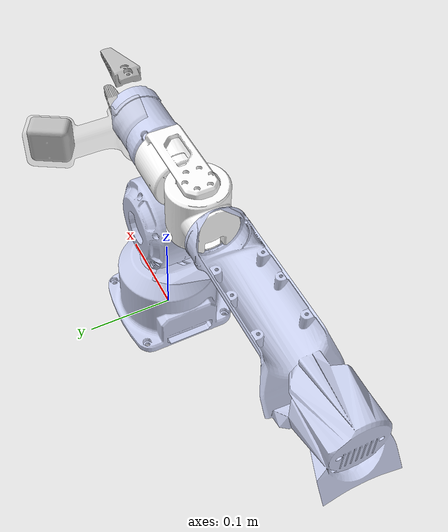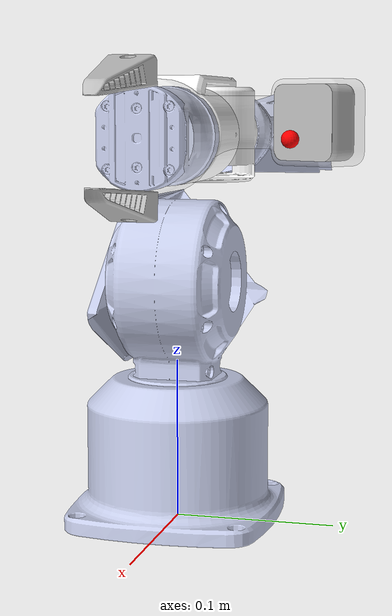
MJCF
<mujoco model="A1_URDF_0607_0028">
  <compiler angle="radian"/>

  <asset>
    <mesh name="base_link" content_type="model/stl" file="base_link.STL"/>
    <mesh name="arm_seg1" content_type="model/stl" file="arm_seg1.STL"/>
    <mesh name="arm_seg2" content_type="model/stl" file="arm_seg2.STL"/>
    <mesh name="arm_seg3" content_type="model/stl" file="arm_seg3.STL"/>
    <mesh name="arm_seg4" content_type="model/stl" file="arm_seg4.STL"/>
    <mesh name="arm_seg5" content_type="model/stl" file="arm_seg5.STL"/>
    <mesh name="arm_seg6" content_type="model/stl" file="arm_seg6.STL"/>
    <mesh name="galaxea_eoat_set" content_type="model/stl" file="galaxea_eoat_set.STL"/>
    <mesh name="left_finger" content_type="model/stl" file="left_finger.STL"/>
    <mesh name="right_finger" content_type="model/stl" file="right_finger.STL"/>
    <mesh name="camera" content_type="model/stl" file="camera.STL"/>
  </asset>

  <worldbody>
    <geom type="mesh" rgba="0.79216 0.81961 0.93333 1" mesh="base_link"/>
    <body name="arm_seg1" pos="-0.0011147 0 0.0892" quat="-3.67321e-06 0 0 1">
      <inertial pos="-1.4403e-06 -0.00074041 0.056573" quat="0.707084 0.00122867 -0.00107609 0.707127" mass="1.391" diaginertia="0.000708573 0.00058101 0.000445827"/>
      <joint name="arm_joint1" pos="0 0 0" axis="0 0 1" range="-2.8798 2.8798" actuatorfrcrange="-40 40"/>
      <geom type="mesh" rgba="0.79216 0.81961 0.93333 1" mesh="arm_seg1"/>
      <body name="arm_seg2" pos="0 -4e-05 0.0615" quat="0.707105 0.707108 0 0">
        <inertial pos="0.23622 0.016356 9.154e-05" quat="0.484393 0.48518 0.524693 0.504639" mass="1.3" diaginertia="0.00761886 0.00757469 0.000578276"/>
        <joint name="arm_joint2" pos="0 0 0" axis="0 0 1" range="0 3.1415" actuatorfrcrange="-40 40"/>
        <geom type="mesh" rgba="0.79216 0.81961 0.93333 1" mesh="arm_seg2"/>
        <body name="arm_seg3" pos="0.34928 0.02 0" quat="0.707105 0 0 0.707108">
          <inertial pos="0.054443 0.045347 0.00042807" quat="0.595278 0.471808 -0.522016 0.387995" mass="0.818" diaginertia="0.00149749 0.00144877 0.00053598"/>
          <joint name="arm_joint3" pos="0 0 0" axis="0 0 1" range="-3.3161 0" actuatorfrcrange="-27 27"/>
          <geom type="mesh" rgba="0.79216 0.81961 0.93333 1" mesh="arm_seg3"/>
          <body name="arm_seg4" pos="0.07 -0.00395 -4e-05" quat="0.499998 -0.5 0.5 0.500002">
            <inertial pos="7.6256e-07 -0.0021448 0.27415" quat="0.70651 0.0169198 -0.0168252 0.707301" mass="0.816" diaginertia="0.000101779 9.7042e-05 8.44616e-05"/>
            <joint name="arm_joint4" pos="0 0 0" axis="0 0 1" range="-2.8798 2.8798" actuatorfrcrange="-7 7"/>
            <geom type="mesh" rgba="1 1 1 1" mesh="arm_seg4"/>
            <body name="arm_seg5" pos="0 0 0.2776" quat="-2.59734e-06 2.59735e-06 -0.707108 0.707105">
              <inertial pos="-3.9997e-06 -0.05431 0.0034482" quat="0.477398 0.87868 0.00338218 -0.000840949" mass="0.801" diaginertia="0.00011332 0.000109027 7.34689e-05"/>
              <joint name="arm_joint5" pos="0 0 0" axis="0 0 1" range="-1.6581 1.6581" actuatorfrcrange="-7 7"/>
              <geom type="mesh" rgba="1 1 1 1" mesh="arm_seg5"/>
              <body name="arm_seg6" pos="0 -0.1575 -0.00023266" quat="0.707105 0.707108 0 0">
                <inertial pos="-0.0113206 0.00196256 0.0176711" quat="0.583625 -0.0526594 0.0473525 0.808929" mass="1.46952" diaginertia="0.00398591 0.00337199 0.00122082"/>
                <joint name="arm_joint6" pos="0 0 0" axis="0 0 1" range="-2.8798 2.8798" actuatorfrcrange="-7 7"/>
                <geom type="mesh" rgba="0.79216 0.81961 0.93333 1" mesh="arm_seg6"/>
                <geom pos="0 0 -0.063796" quat="1 0 0 0" type="mesh" rgba="0.75294 0.75294 0.75294 0.25" mesh="galaxea_eoat_set"/>
                <geom pos="0.092689 0 -0.010838" quat="0.965926 0 -0.25882 0" type="mesh" rgba="0.752941 0.752941 0.752941 1" mesh="camera"/>
                <body name="camera_body" pos="0.092689 0 -0.010838" quat="0.965926 0 -0.258819 0">
                                 <body name="tilt_down" pos="0 0 0" quat="0.9981 0 -0.0611 0">
                  <camera name="end_effector_camera" pos="0 0 0.01" quat="0 0.7071 0.7071 0" fovy="60"/>
                  <site name="camera_marker" pos="0 0 0.01" type="sphere" size="0.005" rgba="1 0 0 1"/>
                </body>
                </body>
                <body name="left_finger" pos="0.00025714 0.041492 0.005904">
                  <inertial pos="-3.90917e-05 -0.0064925 0.0207255" quat="0.707102 0.0633636 -0.0633458 0.701412" mass="0.0920111" diaginertia="3.78659e-05 3.48288e-05 6.45297e-06"/>
                  <joint name="gripper1_axis" pos="0 0 0" axis="0.0014394 -1.0 0" type="slide" range="0 0.025" actuatorfrcrange="-200 200"/>
                  <geom type="mesh" rgba="0.752941 0.752941 0.752941 1" mesh="left_finger"/>
                </body>
                <body name="right_finger" pos="0.00014129 -0.041492 0.005904">
                  <inertial pos="3.911e-05 0.00648979 0.020716" quat="0.707103 -0.0633291 0.0633118 0.701417" mass="0.091987" diaginertia="3.78279e-05 3.47909e-05 6.45217e-06"/>
                  <joint name="gripper2_axis" pos="0 0 0" axis="-0.0014394 1.0 0" type="slide" range="0 0.025" actuatorfrcrange="-200 200"/>
                  <geom type="mesh" rgba="0.752941 0.752941 0.752941 1" mesh="right_finger"/>
                </body>

              </body>
            </body>
          </body>
        </body>
      </body>
    </body>
  </worldbody>
</mujoco>
